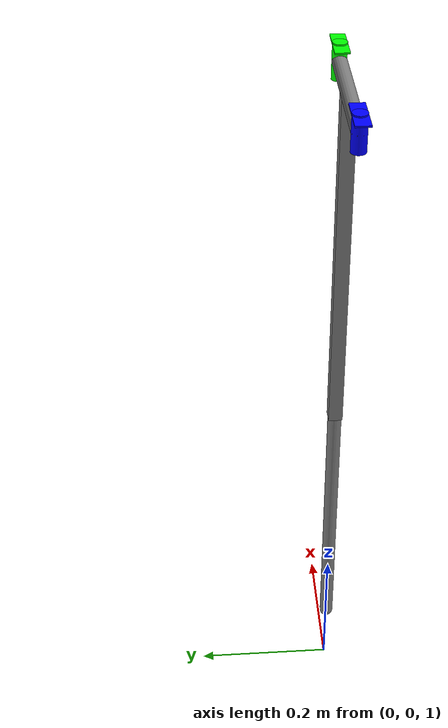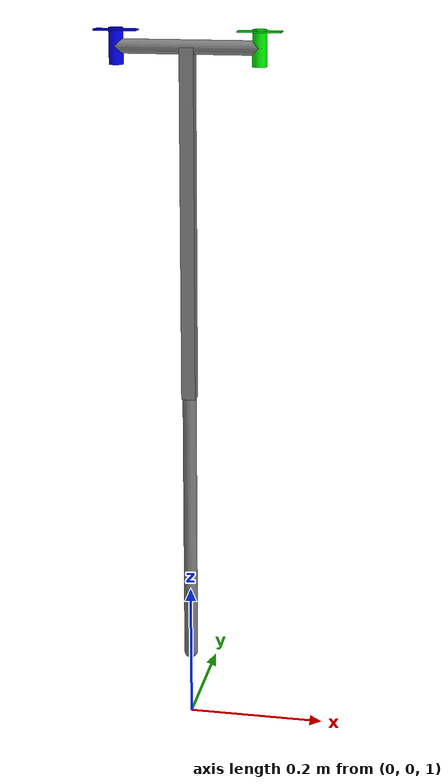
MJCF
<mujoco>
    <compiler angle = "degree"/>
    <option timestep = "0.001"/>
    <option>
        <flag gravity = "disable"/>

    </option>
    <worldbody>
        <geom name="floor" type="plane" pos="0 0 0" size="2 2 .1" rgba = "1 1 1 1" mass = "0"/>
        <body name = "propeller_base" pos = "0 0 2" >
            <joint type = "free" name = "free_joint"/>
            <geom type = "capsule" size = ".01 .1" axisangle = "0 1 0 90" mass = "1"/>
            <body name = "propeller_1" pos = ".1 0 0" >
                <geom name = "propeller_1_stick" type = "cylinder" size = ".01 .025" rgba = "0 1 0 1" mass = "0"/>
                <site name = "propeller_1_fan" type = "box" size = ".03 .01 .001" pos = "0 0 .022" rgba = "0 1 0 1" />
            </body>
            <body name = "propeller_2" pos = "-.1 0 0" >
                <geom name = "propeller_2_stick" type = "cylinder" size = ".01 .025" rgba = "0 0 1 1" mass = "0"/>
                <site name = "propeller_2_fan" type = "box" size = ".03 .01 .001" pos = "0 0 .022" rgba = "0 0 1 1" />
            </body>
            <body name = "leg">
                <joint type = "ball" name = "prop_base_joint" pos = "0 0 0" limited = "false" range = "-45 45"/>

                <geom type = "box" fromto = "0 0 0 0 0 -.5" name = "leg" size = ".01 .01" mass = "1"/>
                <body name = "leg_2" pos = "0 0 -.5">
                    <joint type = "hinge" name = "knee" axis = "0 1 0"/>
                    <geom name = "leg_2_stick" type = "capsule" fromto = "0 0 0 0 0 -.4" size = ".01" mass = "1"/>
                    <site name = "foot" pos = "0 0 -.4"/>

                </body>

            </body>
        </body>

    </worldbody>
    <actuator>
        <motor name = "propeller_1_thrust" site = "propeller_1_fan" gear = "0 0 1 0 0 0"/>
        <motor name = "propeller_2_thrust" site = "propeller_2_fan" gear = "0 0 1 0 0 0"/>
    </actuator>
</mujoco>
